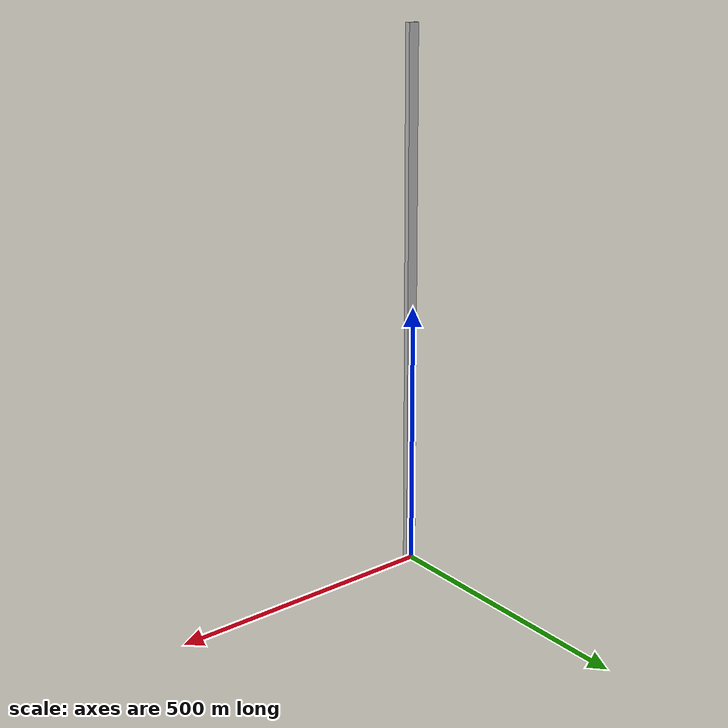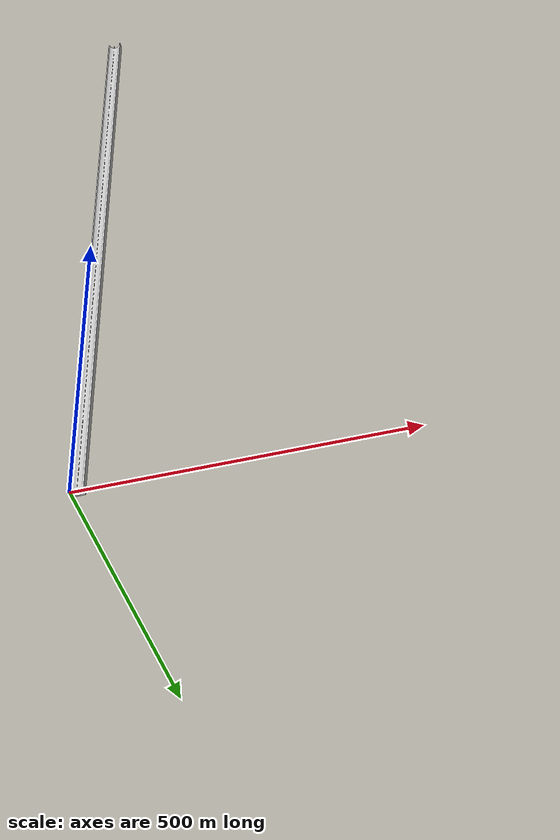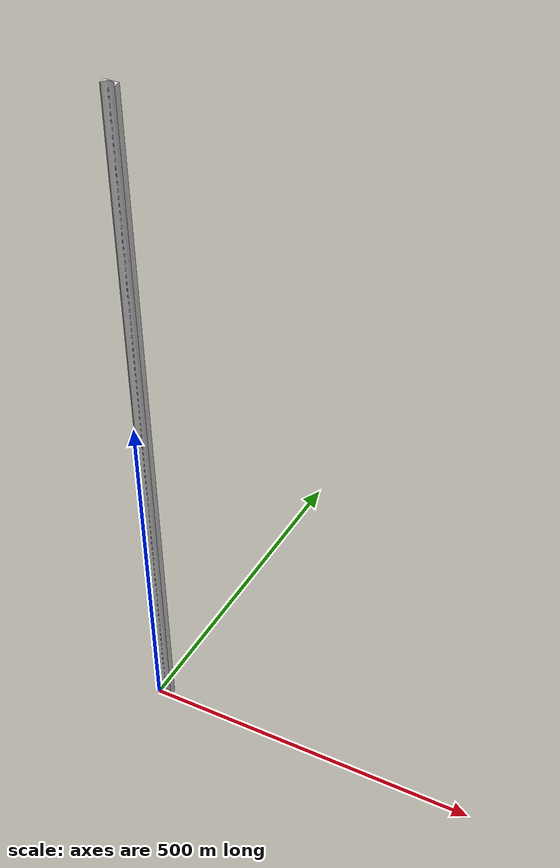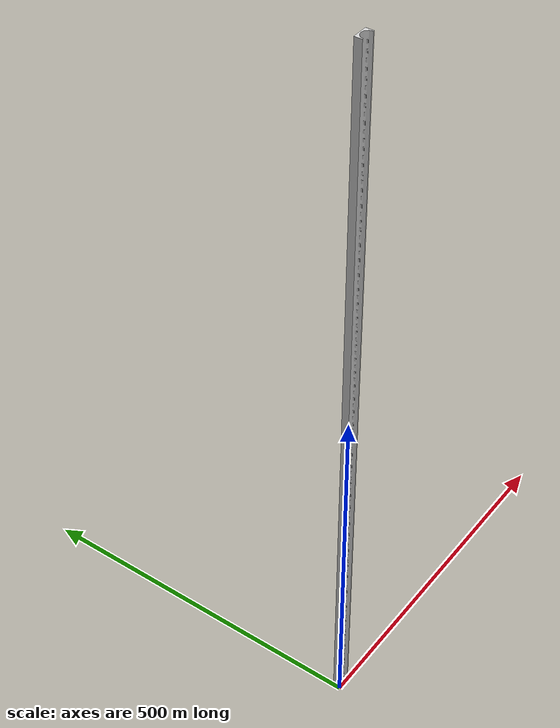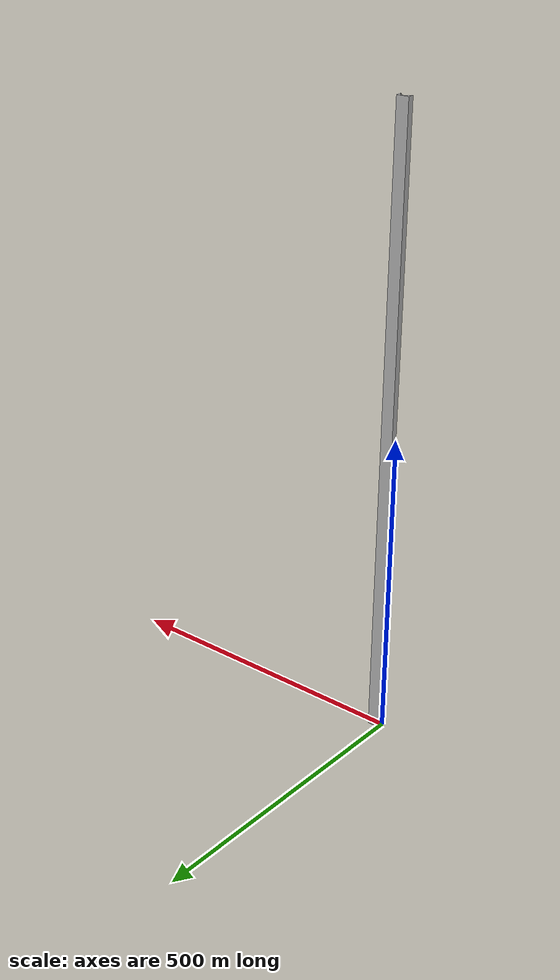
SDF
<?xml version="1.0"?>
<sdf version="1.6">
  <model name="world1">
    <!-- 模型初始位置和姿态 (x y z roll pitch yaw) -->
    <pose>0 0 0 0 0 0</pose>

    <!-- 是否为静态模型（不会移动） -->
    <static>true</static>  <!-- 对于世界/环境，通常设置为静态 -->

    <!-- 允许自动禁用（优化性能） -->
    <allow_auto_disable>true</allow_auto_disable>

    <!-- 模型链接 -->
    <link name="link">

      <!-- 碰撞体（必须要有） -->
      <collision name="collision">
        <geometry>
          <!-- 对于世界模型，通常也需要碰撞体 -->
          <mesh>
            <uri>model://world1/meshes/world.stl</uri>
            <scale>1 1 1</scale>
          </mesh>
        </geometry>
      </collision>

      <!-- 视觉部分 -->
      <visual name="visual">
        <pose>0 0 0 0 0 0</pose>
        <geometry>
          <mesh>
            <!-- URI格式：model://模型名/meshes/文件名 -->
            <uri>model://world1/meshes/world.stl</uri>

            <!-- 缩放因子（如果STL单位是毫米，需要缩放0.001） -->
            <scale>1 1 1</scale>
          </mesh>
        </geometry>

        <!-- 材质属性（可选） -->
        <material>
          <ambient>0.5 0.5 0.5 1</ambient>
          <diffuse>0.8 0.8 0.8 1</diffuse>
          <specular>0.1 0.1 0.1 1</specular>
          <emissive>0 0 0 1</emissive>
        </material>
      </visual>

      <!-- 惯性参数（必须要有，即使是静态模型） -->
      <inertial>
        <mass>1.0</mass>
        <inertia>
          <ixx>0.083</ixx>
          <ixy>0</ixy>
          <ixz>0</ixz>
          <iyy>0.083</iyy>
          <iyz>0</iyz>
          <izz>0.083</izz>
        </inertia>
      </inertial>

    </link>
  </model>
</sdf>
